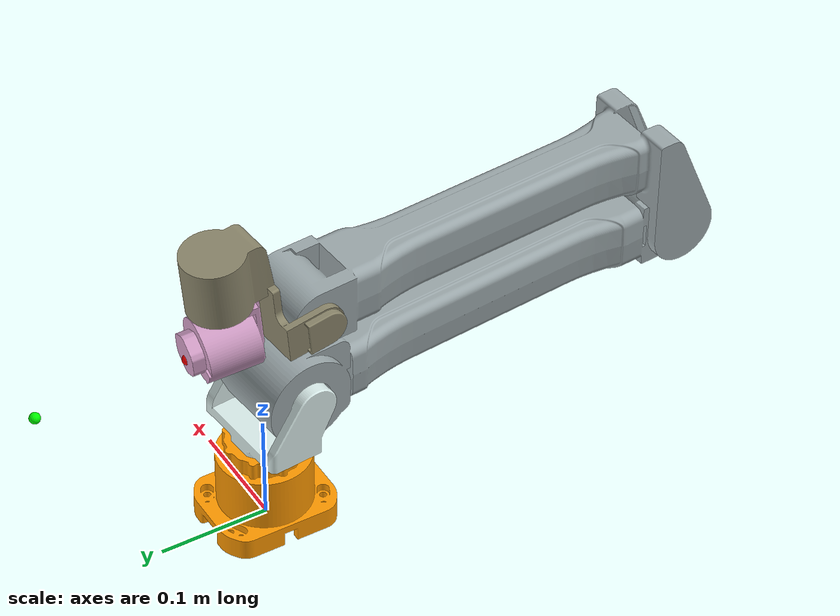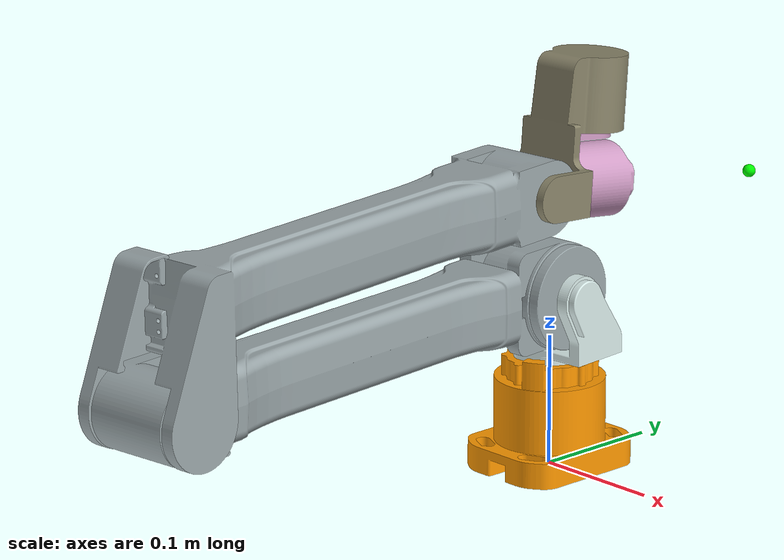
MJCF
<mujoco model="big_yamZY">
  <compiler angle="radian" meshdir="assets"/>
  <size njmax="500" nconmax="100"/>

  <asset>
    <mesh name="base" file="base.stl"/>
    <mesh name="link1" file="link1.stl"/>
    <mesh name="link2" file="link2.stl"/>
    <mesh name="link3" file="link3.stl"/>
    <mesh name="link4" file="link4.stl"/>
    <mesh name="link5" file="link5.stl"/>
  </asset>

  <worldbody>
    <geom pos="0.00250966 0.0534862 -1.00632" quat="0.7071 0.00269856 -0.00269855 0.707103" type="mesh" rgba="1 0.6 0 1" mesh="base"/>
    <body name="link1" pos="0 0 0.0856176" quat="5.94157e-08 0.0447813 -0.998997 -1.32546e-06">
      <inertial pos="-9.56697e-05 -0.00522779 -0.0216352" quat="0.598487 0.376102 0.589367 0.391162" mass="0.401154" diaginertia="0.000713913 0.000523966 0.000309117"/>
      <joint name="joint1" pos="0 0 0" axis="0 0 1" range="-1.39394 4.27838" actuatorfrcrange="-10 10"/>
      <geom pos="0.0534862 0.00250966 1.09193" quat="1.32679e-06 0.999993 5.06349e-09 -0.00381633" type="mesh" rgba="0.862745 0.937255 0.929412 1" mesh="link1"/>
      <body name="link2" pos="0.03025 -0.0214683 -0.0568824" quat="9.38184e-07 -0.707105 -9.38187e-07 -0.707108">
        <inertial pos="-0.000175493 0.172117 -0.0295276" quat="0.706672 0.707536 -0.00182922 0.00191623" mass="1.45435" diaginertia="0.030477 0.030444 0.000894217"/>
        <joint name="joint2" pos="0 0 0" axis="0 0 1" range="0 3.14159" actuatorfrcrange="-10 10"/>
        <geom pos="-1.14882 0.0239779 0.0229862" quat="9.41761e-07 0.709801 -9.34597e-07 0.704402" type="mesh" rgba="0.611765 0.658824 0.670588 1" mesh="link2"/>
        <body name="link3" pos="7.57417e-05 0.3887 0.00463563" quat="0.00272002 0.701517 -0.712643 -0.00267757">
          <inertial pos="0.194318 0.0673381 0.0357453" quat="-0.0470084 0.707358 -0.00532498 0.70527" mass="1.21513" diaginertia="0.0197486 0.0196621 0.00104913"/>
          <joint name="joint3" pos="0 0 0" axis="0 0 1" range="-0.0157332 3.12586" actuatorfrcrange="-10 10"/>
          <geom pos="0.364721 -1.149 0.079431" quat="0.499998 -0.5 -0.5 -0.500002" type="mesh" rgba="0.611765 0.658824 0.670588 1" mesh="link3"/>
          <body name="link4" pos="0.373401 0.072 0.00105" quat="0.998452 0 0 -0.0556153">
            <inertial pos="0.0573245 0.0536732 0.0330434" quat="0.634124 0.700572 -0.199997 -0.259011" mass="0.454939" diaginertia="0.000806296 0.000769631 0.000282067"/>
            <joint name="joint4" pos="0 0 0" axis="0 0 1" range="-1.45951 1.68208" actuatorfrcrange="-10 10"/>
            <geom pos="-0.00868006 -1.221 0.078381" quat="0.499998 -0.5 -0.5 -0.500002" type="mesh" rgba="0.545098 0.52549 0.419608 1" mesh="link4"/>
            <body name="link5" pos="0.0739989 0.0405003 0.0338995" quat="-0.452799 0.452799 0.543114 0.543114">
              <inertial pos="-3.55003e-05 0.000825911 -0.0375847" quat="0.911516 0.411243 0.00302177 0.00303654" mass="0.403307" diaginertia="0.000219794 0.000195686 0.000169647"/>
              <joint name="joint5" pos="0 0 0" axis="0 0 1" range="-1.38992 1.75167" actuatorfrcrange="-10 10"/>
              <geom pos="0.0444816 -0.082679 -1.2615" quat="1 0 0 0" type="mesh" rgba="0.827451 0.623529 0.784314 1" mesh="link5"/>
              <!-- 与 big_yam 同构，供 crank_4310 合并 -->
              <body name="gripper_adapter" pos="0 -0.0085 -0.006" quat="0 1 0 0">
                <inertial pos="0 0 0" mass="1e-9" diaginertia="1e-9 1e-9 1e-9"/>
                <body name="link_6" pos="2.39858e-07 -0.0419481 0.0404996" quat="0.499998 -0.5 -0.5 -0.500002">
                  <!-- 与 gripper/crank_4310/crank_4310.xml 中 link_6 一致；合并时该子树被夹爪侧替换，此处为单臂/预览时的末端惯量 -->
                  <inertial pos="-5.10177e-05 -0.00269952 0.0581778" quat="0.98383 0.174699 0.0 0.0" mass="0.55366" diaginertia="0.000956992 0.000799286 0.000469547"/>
                  <joint name="joint6" pos="0 0 0" axis="0 0 -1" range="-2.08973 2.09906" actuatorfrcrange="-10 10"/>
                  <site name="tcp_site" pos="0 0 0" quat="1 0 0 1" size="0.005" rgba="1 0 0 1"/>
                  <site name="grasp_site" pos="0 0 -0.1347" quat="1 0 0 1" size="0.005" rgba="0 1 0 1"/>
                </body>
              </body>
            </body>
          </body>
        </body>
      </body>
    </body>
  </worldbody>
</mujoco>
